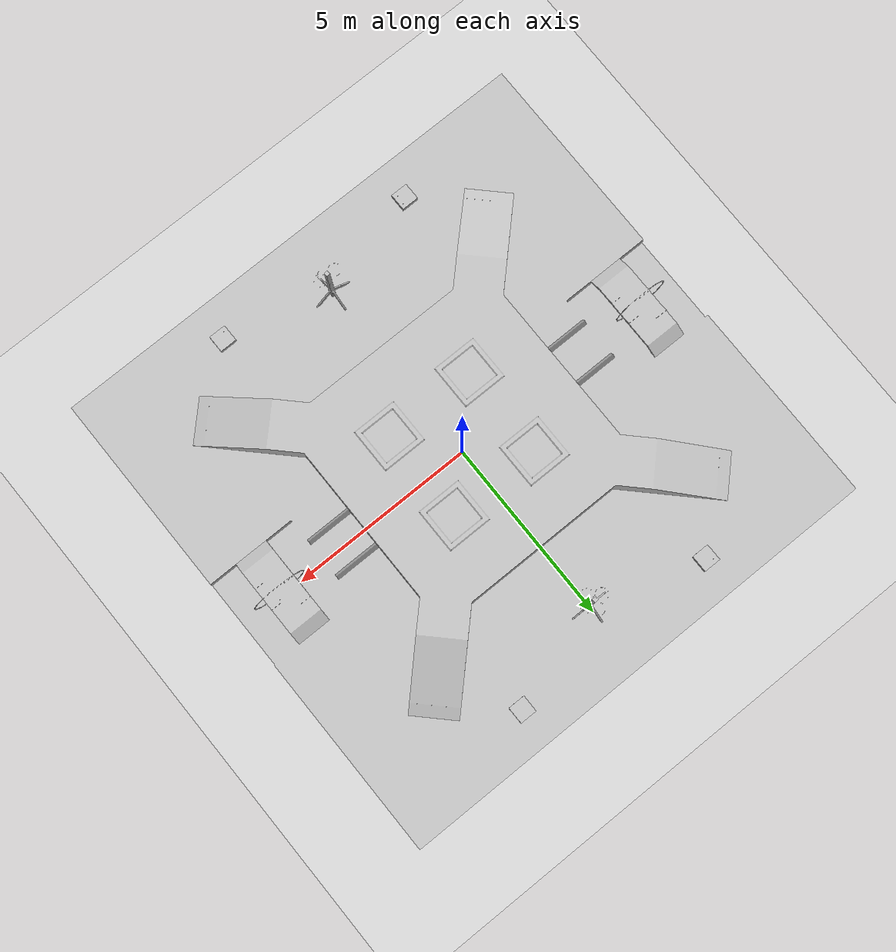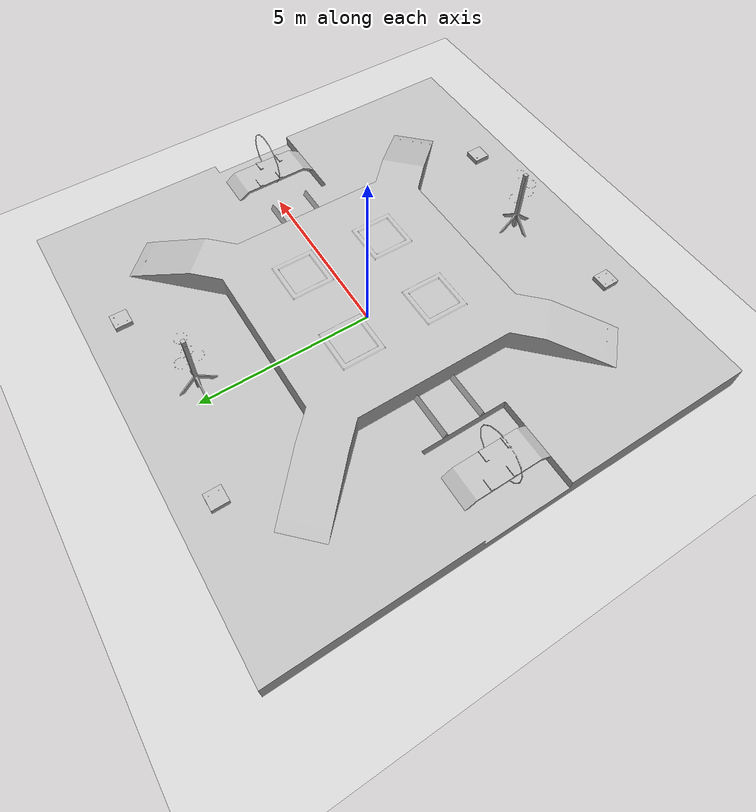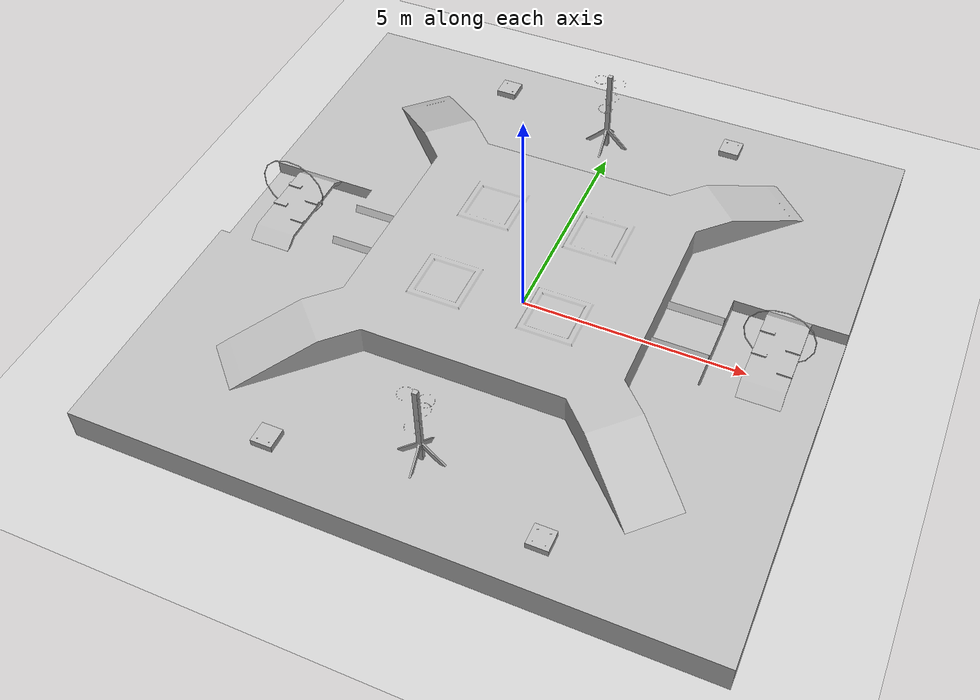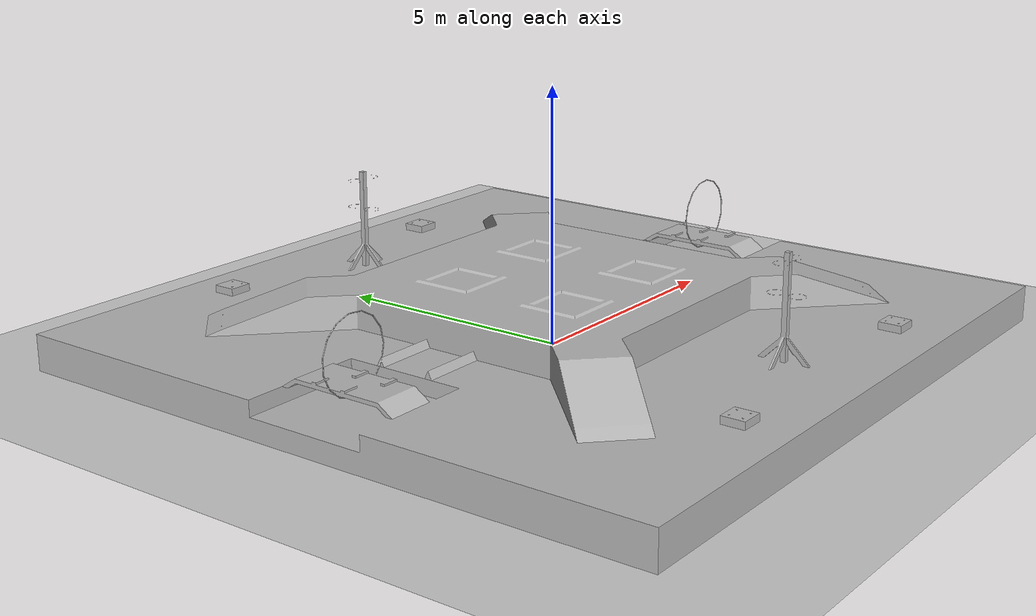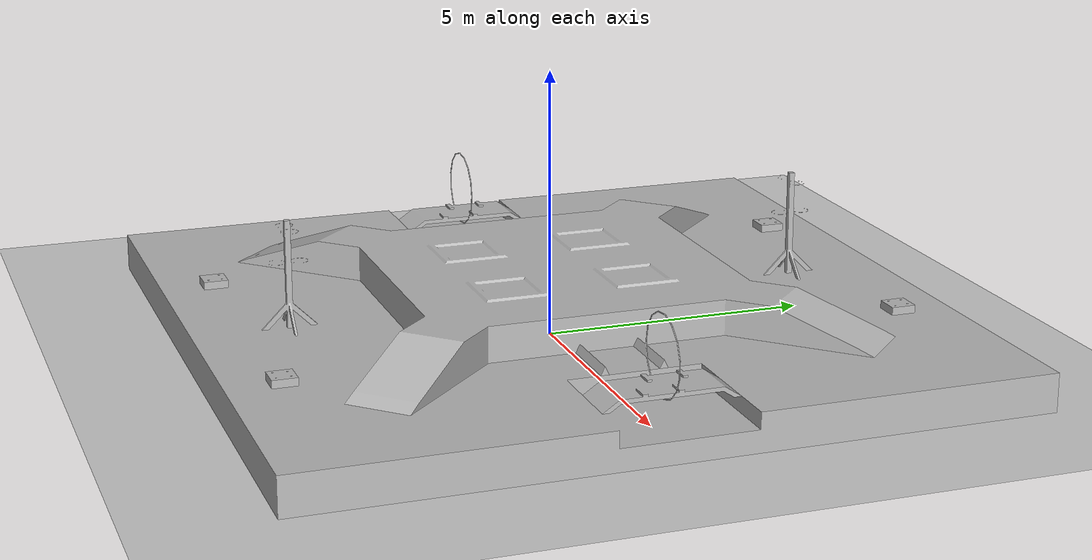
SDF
<?xml version="1.0"?>
<sdf version="1.4">
  <world name="mrdc2019">
     <include>
      <uri>model://ground_plane</uri>
    </include>

	<light type="directional" name="sun">
		<cast_shadows>false</cast_shadows>
	</light>

  <!-- Gazebo doesn't model light diffusion, so we need some extra light sources
       to make sure everything is evenly lit -->
  <light type="point" name="overhead_1">
    <pose>5 5 5 0 0 0</pose>
    <diffuse>.9 .9 .9 1</diffuse>
    <specular>.1 .1 .1 1</specular>
    <attenuation>
      <range>20</range>
      <linear>0.2</linear>
      <constant>0.8</constant>
    </attenuation>
    <cast_shadows>true</cast_shadows>
  </light>
  <light type="point" name="overhead_2">
    <pose>5 -5 5 0 0 0</pose>
    <diffuse>.9 .9 .9 1</diffuse>
    <specular>.1 .1 .1 1</specular>
    <attenuation>
      <range>20</range>
      <linear>0.2</linear>
      <constant>0.8</constant>
    </attenuation>
    <cast_shadows>true</cast_shadows>
  </light>
  <light type="point" name="overhead_3">
    <pose>-5 5 5 0 0 0</pose>
    <diffuse>.9 .9 .9 1</diffuse>
    <specular>.1 .1 .1 1</specular>
    <attenuation>
      <range>20</range>
      <linear>0.2</linear>
      <constant>0.8</constant>
    </attenuation>
    <cast_shadows>true</cast_shadows>
  </light>
  <light type="point" name="overhead_4">
    <pose>-5 -5 5 0 0 0</pose>
    <diffuse>.9 .9 .9 1</diffuse>
    <specular>.1 .1 .1 1</specular>
    <attenuation>
      <range>20</range>
      <linear>0.2</linear>
      <constant>0.8</constant>
    </attenuation>
    <cast_shadows>true</cast_shadows>
  </light>

	<model name="platform">
	   <static>true</static>
	   <link name="platform">
	      <visual name="visual">
		<geometry>
		   <mesh>
         <uri>file://meshes/mrdc/2019/platform.stl</uri>
		   </mesh>
		</geometry>
	      </visual>
	      <collision name="collision">
		<geometry>
		   <mesh>
         <uri>file://meshes/mrdc/2019/platform.stl</uri>
		   </mesh>
		</geometry>
	      </collision>
	   </link>
	</model>

	<model name="Ramp">
	   <static>true</static>
	   <link name="Ramp">
	      <visual name="visual">
		<geometry>
		   <mesh>
         <uri>file://meshes/mrdc/2019/Ramp.stl</uri>
		   </mesh>
		</geometry>
	      </visual>
	      <collision name="collision">
		<geometry>
		   <mesh>
         <uri>file://meshes/mrdc/2019/Ramp.stl</uri>
		   </mesh>
		</geometry>
	      </collision>
	   </link>
	</model>

	<model name="bridge">
	   <static>true</static>
	   <link name="bridge">
	      <visual name="visual">
		<geometry>
		   <mesh>
		      <uri>file://meshes/mrdc/2019/bridge.stl</uri>
		   </mesh>
		</geometry>
	      </visual>
	      <collision name="collision">
		<geometry>
		   <mesh>
		      <uri>file://meshes/mrdc/2019/bridge.stl</uri>
		   </mesh>
		</geometry>
	      </collision>
	   </link>
	</model>

	<model name="hoopStand">
	   <static>true</static>
	   <link name="hoopStand">
	      <visual name="visual">
		<geometry>
		   <mesh>
		      <uri>file://meshes/mrdc/2019/hoopStand.stl</uri>
		   </mesh>
		</geometry>
	      </visual>
	      <collision name="collision">
		<geometry>
		   <mesh>
		      <uri>file://meshes/mrdc/2019/hoopStand.stl</uri>
		   </mesh>
		</geometry>
	      </collision>
	   </link>
	</model>

	<model name="simonBox">
	   <static>true</static>
	   <link name="simonBox">
	      <visual name="visual">
		<geometry>
		   <mesh>
		      <uri>file://meshes/mrdc/2019/simonBox.stl</uri>
		   </mesh>
		</geometry>
	      </visual>
	      <collision name="collision">
		<geometry>
		   <mesh>
		      <uri>file://meshes/mrdc/2019/simonBox.stl</uri>
		   </mesh>
		</geometry>
	      </collision>
	   </link>
	</model>

  </world>
</sdf>
